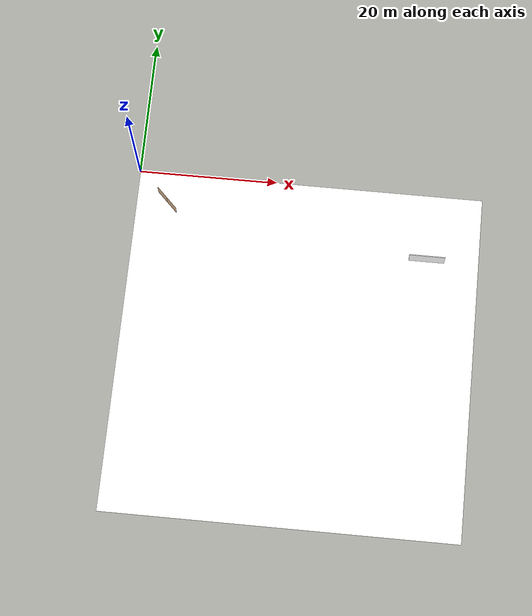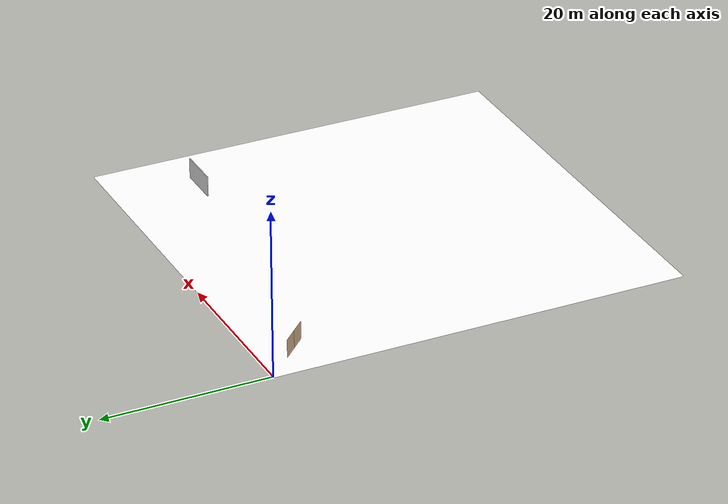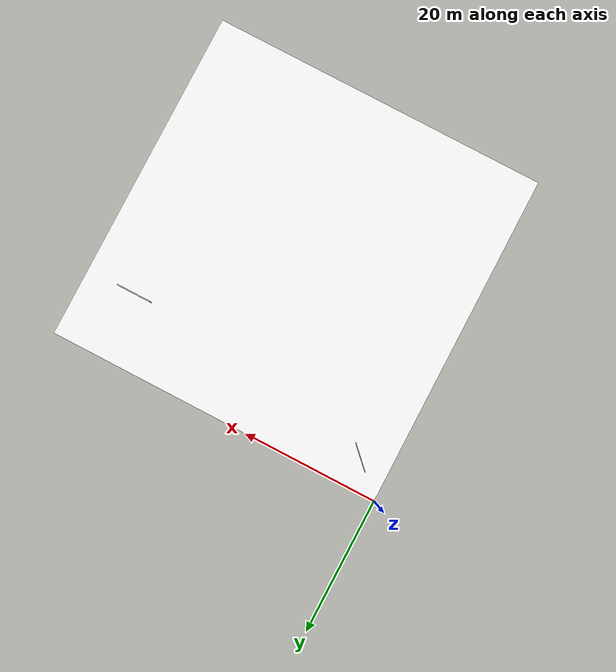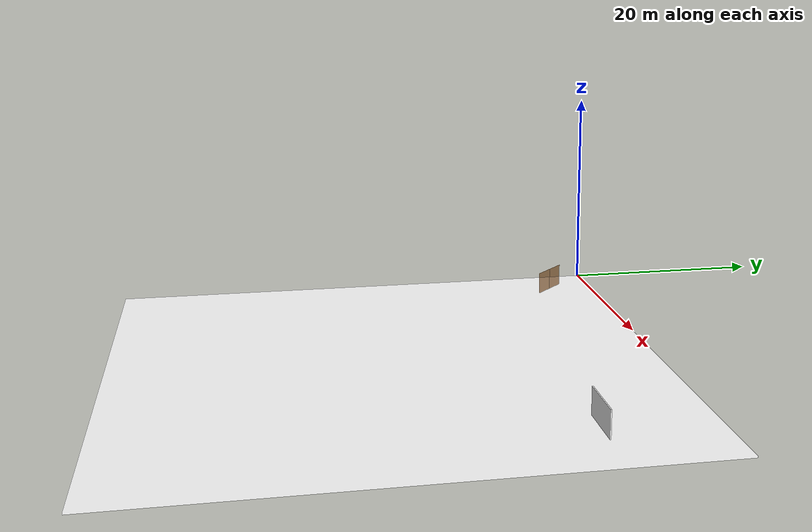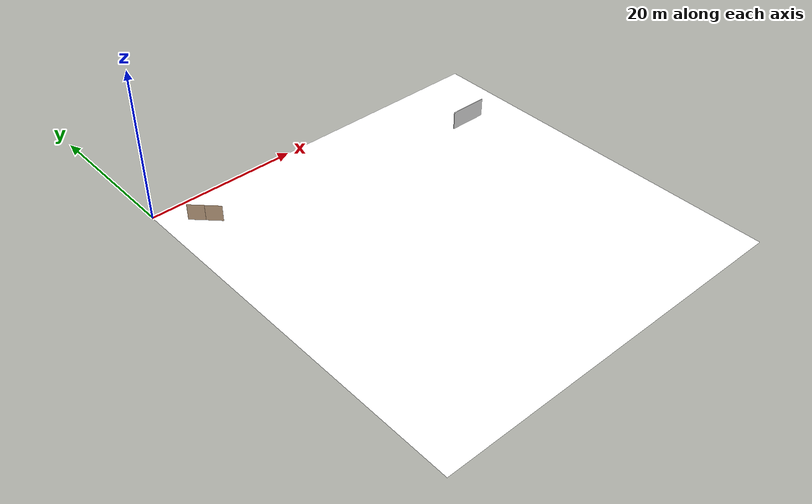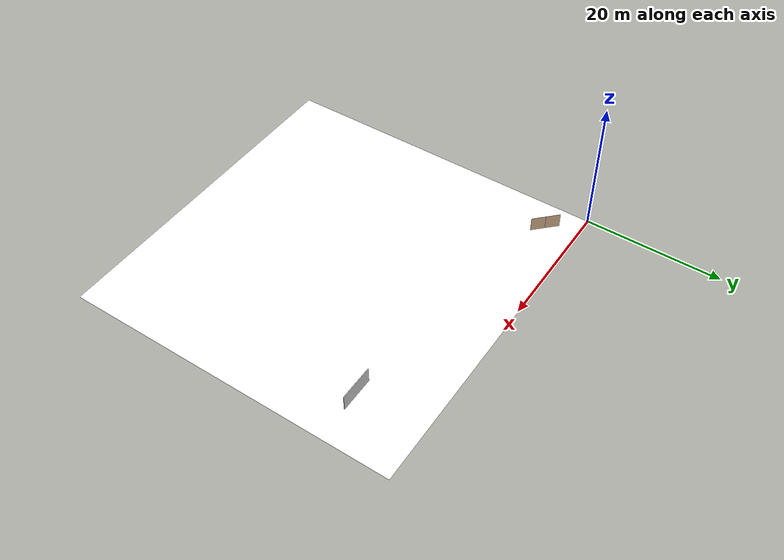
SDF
<sdf version="1.7">
 <world name="world">
  <scene><ambient>0.8 0.8 0.8 1.0</ambient><background>0 0 0</background><grid>false</grid></scene>
  <include><uri>model://sun</uri></include>
  <model name="main_door">
   <pose>4.5 -4.5 0.0 0 0 2.356194490192345</pose>
   <link name="right">
    <pose>1.0606601717798212 0 1.11 0 0 0</pose>
    <visual name="right_visual">
     <geometry><box><size>2.1113203435596426 0.03 2.2</size></box></geometry>
     <material><ambient>0.5 0.25 0 0.6</ambient><diffuse>0.5 0.25 0 0.6</diffuse></material>
    </visual>
    <collision name="right_collision">
     <geometry><box><size>2.1113203435596426 0.03 2.2</size></box></geometry>
     <surface><contact><collide_bitmask>0x02</collide_bitmask></contact></surface>
    </collision>
    <inertial>
     <mass>50.0</mass>
     <inertia><ixx>20.17041666666667</ixx><iyy>38.7403066380367</iyy><izz>18.577389971370028</izz></inertia>
    </inertial>
   </link>
   <joint name="right_joint" type="revolute">
    <parent>world</parent>
    <child>right</child>
    <axis><xyz>0 0 -1</xyz><limit><lower>0</lower><upper>1.57</upper></limit></axis>
    <pose>1.0606601717798212 0 0 0 0 0</pose>
   </joint>
   <link name="left">
    <pose>-1.0606601717798212 0 1.11 0 0 0</pose>
    <visual name="left_visual">
     <geometry><box><size>2.1113203435596426 0.03 2.2</size></box></geometry>
     <material><ambient>0.5 0.25 0 0.6</ambient><diffuse>0.5 0.25 0 0.6</diffuse></material>
    </visual>
    <collision name="left_collision">
     <geometry><box><size>2.1113203435596426 0.03 2.2</size></box></geometry>
     <surface><contact><collide_bitmask>0x02</collide_bitmask></contact></surface>
    </collision>
    <inertial>
     <mass>50.0</mass>
     <inertia><ixx>20.17041666666667</ixx><iyy>38.7403066380367</iyy><izz>18.577389971370028</izz></inertia>
    </inertial>
   </link>
   <joint name="left_joint" type="revolute">
    <parent>world</parent>
    <child>left</child>
    <axis><xyz>0 0 -1</xyz><limit><lower>-1.57</lower><upper>0</upper></limit></axis>
    <pose>-1.0606601717798212 0 0 0 0 0</pose>
   </joint>
   <plugin name="door" filename="libdoor.so">
    <v_max_door>0.5</v_max_door>
    <a_max_door>0.3</a_max_door>
    <a_nom_door>0.15</a_nom_door>
    <dx_min_door>0.01</dx_min_door>
    <f_max_door>500.0</f_max_door>
    <door name="main_door" type="DoubleSwingDoor" left_joint_name="left_joint" right_joint_name="right_joint"/>
   </plugin>
  </model>
  <include><name>building_L1</name><uri>model://building_L1</uri></include>
  <rmf_charger_waypoints name="charger_waypoints">
   <rmf_vertex name="bottom_left" x="10.0" y="-10.0" level="L1"/>
   <rmf_vertex name="bottom_right" x="10.0" y="-30.0" level="L1"/>
   <rmf_vertex name="top_left" x="30.0" y="-10.0" level="L1"/>
   <rmf_vertex name="top_right" x="30.0" y="-30.0" level="L1"/>
  </rmf_charger_waypoints>
 </world>
</sdf>

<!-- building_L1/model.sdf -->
<sdf version="1.7">
  <model name="building_L1">
    <static>true</static>
    <link name="floor_1">
      <visual name="visual">
        <geometry>
          <mesh>
            <uri>model://building_L1/meshes/floor_1.obj</uri>
          </mesh>
        </geometry>
        <material>
          <diffuse>1.0 1.0 1.0</diffuse>
          <specular>0.1 0.1 0.1</specular>
          <pbr>
            <metal>
              <metalness>0.0</metalness>
              <albedo_map>model://building_L1/meshes/blue_linoleum.png</albedo_map>
            </metal>
          </pbr>
          <script>
            <uri>model://building_L1/meshes/</uri>
            <name>floor_1_Diffuse</name>
          </script>
        </material>
      </visual>
      <collision name="collision">
        <geometry>
          <mesh>
            <uri>model://building_L1/meshes/floor_1.obj</uri>
          </mesh>
        </geometry>
        <surface>
          <contact>
            <collide_bitmask>0x01</collide_bitmask>
          </contact>
        </surface>
      </collision>
    </link>
    <link name="wall_1">
      <visual name="wall_1">
        <geometry>
          <mesh>
            <uri>model://building_L1/meshes/wall_1.obj</uri>
          </mesh>
        </geometry>
        <material>
          <diffuse>1.0 1.0 1.0</diffuse>
          <specular>0.1 0.1 0.1</specular>
          <pbr>
            <metal>
              <metalness>0.0</metalness>
              <albedo_map>model://building_L1/meshes/default.png</albedo_map>
            </metal>
          </pbr>
          <script>
            <uri>model://building_L1/meshes/</uri>
            <name>wall_1_Diffuse</name>
          </script>
        </material>
      </visual>
      <collision name="collision">
        <geometry>
          <mesh>
            <uri>model://building_L1/meshes/wall_1.obj</uri>
          </mesh>
        </geometry>
        <surface>
          <contact>
            <collide_bitmask>0x01</collide_bitmask>
          </contact>
        </surface>
      </collision>
      <pose>39.95 -10.05 0 0 0 0</pose>
    </link>
  </model>
</sdf>
